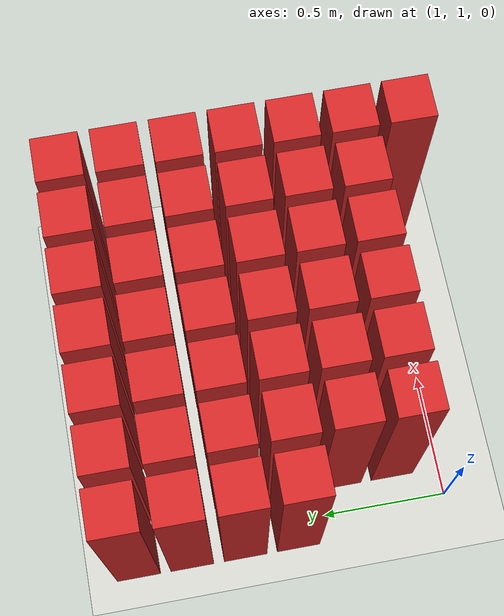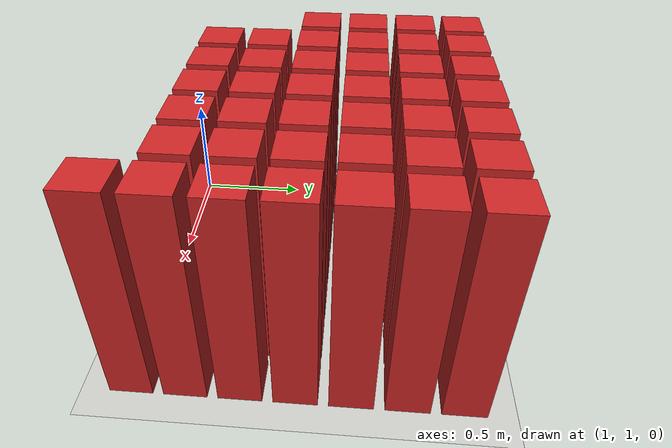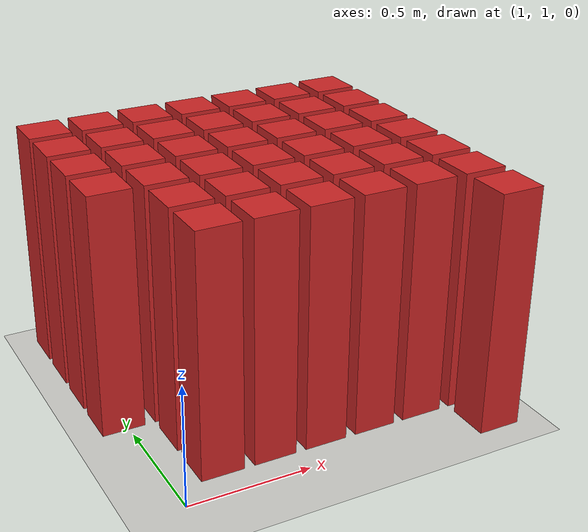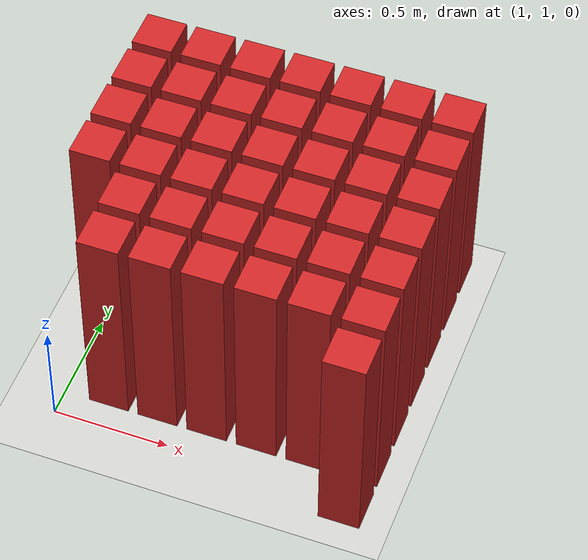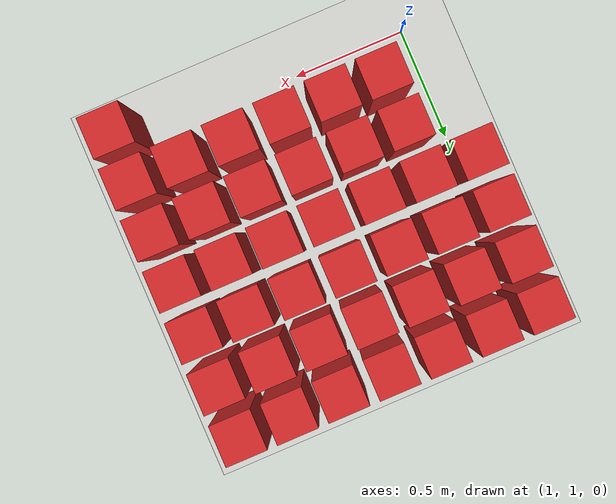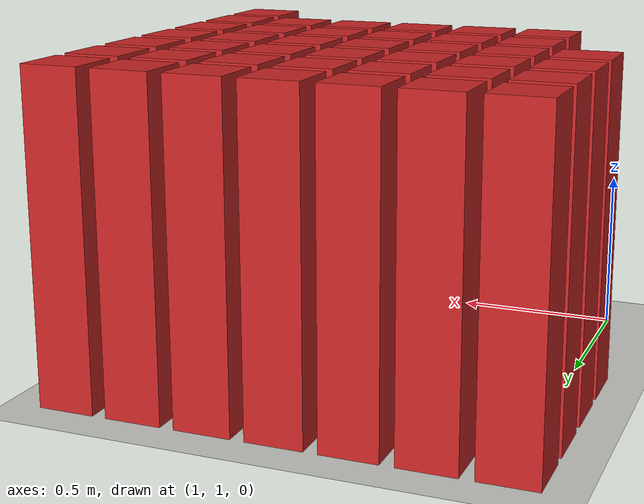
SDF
<sdf version="1.7">
 <world name="default">
  <model name="ground_plane">
   <static>1</static>
   <link name="link">
    <collision name="collision">
     <geometry><plane><normal>0 0 1</normal><size>100 100</size></plane></geometry>
     <surface>
      <contact><collide_bitmask>65535</collide_bitmask></contact>
      <friction><ode><mu>100</mu><mu2>50</mu2></ode></friction>
     </surface>
    </collision>
    <visual name="visual">
     <cast_shadows>0</cast_shadows>
     <geometry><plane><normal>0 0 1</normal><size>100 100</size></plane></geometry>
     <material>
      <script><uri>file://media/materials/scripts/gazebo.material</uri><name>Gazebo/CeilingTiled</name></script>
     </material>
    </visual>
   </link>
  </model>
  <model name="wall390">
   <link name="link">
    <pose>0 0 0.5 0 -0 0</pose>
    <inertial>
     <mass>0.5167</mass>
     <inertia>
      <ixx>0.000861167</ixx>
      <ixy>0</ixy>
      <ixz>0</ixz>
      <iyy>0.000861167</iyy>
      <iyz>0</iyz>
      <izz>0.000861167</izz>
     </inertia>
    </inertial>
    <collision name="collision">
     <geometry><box><size>0.21 0.21 1</size></box></geometry>
     <surface>
      <contact>
       <poissons_ratio>0.347</poissons_ratio>
       <elastic_modulus>8.8e+09</elastic_modulus>
       <ode><kp>100000</kp><kd>100</kd><max_vel>100</max_vel><min_depth>0.001</min_depth></ode>
      </contact>
      <friction>
       <torsional>
        <coefficient>1</coefficient>
        <use_patch_radius>0</use_patch_radius>
        <surface_radius>0.01</surface_radius>
       </torsional>
      </friction>
     </surface>
    </collision>
    <visual name="visual">
     <geometry><box><size>0.175 0.175 1</size></box></geometry>
     <material>
      <script><uri>file://media/materials/scripts/gazebo.material</uri><name>Gazebo/Red</name></script>
     </material>
    </visual>
   </link>
   <pose>2.28261 0.978261 0 0 -0 0</pose>
  </model>
  <model name="wall408">
   <link name="link">
    <pose>0 0 0.5 0 -0 0</pose>
    <inertial>
     <mass>0.5167</mass>
     <inertia>
      <ixx>0.000861167</ixx>
      <ixy>0</ixy>
      <ixz>0</ixz>
      <iyy>0.000861167</iyy>
      <iyz>0</iyz>
      <izz>0.000861167</izz>
     </inertia>
    </inertial>
    <collision name="collision">
     <geometry><box><size>0.21 0.21 1</size></box></geometry>
     <surface>
      <contact>
       <poissons_ratio>0.347</poissons_ratio>
       <elastic_modulus>8.8e+09</elastic_modulus>
       <ode><kp>100000</kp><kd>100</kd><max_vel>100</max_vel><min_depth>0.001</min_depth></ode>
      </contact>
      <friction>
       <torsional>
        <coefficient>1</coefficient>
        <use_patch_radius>0</use_patch_radius>
        <surface_radius>0.01</surface_radius>
       </torsional>
      </friction>
     </surface>
    </collision>
    <visual name="visual">
     <geometry><box><size>0.175 0.175 1</size></box></geometry>
     <material>
      <script><uri>file://media/materials/scripts/gazebo.material</uri><name>Gazebo/Red</name></script>
     </material>
    </visual>
   </link>
   <pose>1.19565 1.19565 0 0 -0 0</pose>
  </model>
  <model name="wall409">
   <link name="link">
    <pose>0 0 0.5 0 -0 0</pose>
    <inertial>
     <mass>0.5167</mass>
     <inertia>
      <ixx>0.000861167</ixx>
      <ixy>0</ixy>
      <ixz>0</ixz>
      <iyy>0.000861167</iyy>
      <iyz>0</iyz>
      <izz>0.000861167</izz>
     </inertia>
    </inertial>
    <collision name="collision">
     <geometry><box><size>0.21 0.21 1</size></box></geometry>
     <surface>
      <contact>
       <poissons_ratio>0.347</poissons_ratio>
       <elastic_modulus>8.8e+09</elastic_modulus>
       <ode><kp>100000</kp><kd>100</kd><max_vel>100</max_vel><min_depth>0.001</min_depth></ode>
      </contact>
      <friction>
       <torsional>
        <coefficient>1</coefficient>
        <use_patch_radius>0</use_patch_radius>
        <surface_radius>0.01</surface_radius>
       </torsional>
      </friction>
     </surface>
    </collision>
    <visual name="visual">
     <geometry><box><size>0.175 0.175 1</size></box></geometry>
     <material>
      <script><uri>file://media/materials/scripts/gazebo.material</uri><name>Gazebo/Red</name></script>
     </material>
    </visual>
   </link>
   <pose>1.41304 1.19565 0 0 -0 0</pose>
  </model>
  <model name="wall410">
   <link name="link">
    <pose>0 0 0.5 0 -0 0</pose>
    <inertial>
     <mass>0.5167</mass>
     <inertia>
      <ixx>0.000861167</ixx>
      <ixy>0</ixy>
      <ixz>0</ixz>
      <iyy>0.000861167</iyy>
      <iyz>0</iyz>
      <izz>0.000861167</izz>
     </inertia>
    </inertial>
    <collision name="collision">
     <geometry><box><size>0.21 0.21 1</size></box></geometry>
     <surface>
      <contact>
       <poissons_ratio>0.347</poissons_ratio>
       <elastic_modulus>8.8e+09</elastic_modulus>
       <ode><kp>100000</kp><kd>100</kd><max_vel>100</max_vel><min_depth>0.001</min_depth></ode>
      </contact>
      <friction>
       <torsional>
        <coefficient>1</coefficient>
        <use_patch_radius>0</use_patch_radius>
        <surface_radius>0.01</surface_radius>
       </torsional>
      </friction>
     </surface>
    </collision>
    <visual name="visual">
     <geometry><box><size>0.175 0.175 1</size></box></geometry>
     <material>
      <script><uri>file://media/materials/scripts/gazebo.material</uri><name>Gazebo/Red</name></script>
     </material>
    </visual>
   </link>
   <pose>1.63043 1.19565 0 0 -0 0</pose>
  </model>
  <model name="wall411">
   <link name="link">
    <pose>0 0 0.5 0 -0 0</pose>
    <inertial>
     <mass>0.5167</mass>
     <inertia>
      <ixx>0.000861167</ixx>
      <ixy>0</ixy>
      <ixz>0</ixz>
      <iyy>0.000861167</iyy>
      <iyz>0</iyz>
      <izz>0.000861167</izz>
     </inertia>
    </inertial>
    <collision name="collision">
     <geometry><box><size>0.21 0.21 1</size></box></geometry>
     <surface>
      <contact>
       <poissons_ratio>0.347</poissons_ratio>
       <elastic_modulus>8.8e+09</elastic_modulus>
       <ode><kp>100000</kp><kd>100</kd><max_vel>100</max_vel><min_depth>0.001</min_depth></ode>
      </contact>
      <friction>
       <torsional>
        <coefficient>1</coefficient>
        <use_patch_radius>0</use_patch_radius>
        <surface_radius>0.01</surface_radius>
       </torsional>
      </friction>
     </surface>
    </collision>
    <visual name="visual">
     <geometry><box><size>0.175 0.175 1</size></box></geometry>
     <material>
      <script><uri>file://media/materials/scripts/gazebo.material</uri><name>Gazebo/Red</name></script>
     </material>
    </visual>
   </link>
   <pose>1.84783 1.19565 0 0 -0 0</pose>
  </model>
  <model name="wall412">
   <link name="link">
    <pose>0 0 0.5 0 -0 0</pose>
    <inertial>
     <mass>0.5167</mass>
     <inertia>
      <ixx>0.000861167</ixx>
      <ixy>0</ixy>
      <ixz>0</ixz>
      <iyy>0.000861167</iyy>
      <iyz>0</iyz>
      <izz>0.000861167</izz>
     </inertia>
    </inertial>
    <collision name="collision">
     <geometry><box><size>0.21 0.21 1</size></box></geometry>
     <surface>
      <contact>
       <poissons_ratio>0.347</poissons_ratio>
       <elastic_modulus>8.8e+09</elastic_modulus>
       <ode><kp>100000</kp><kd>100</kd><max_vel>100</max_vel><min_depth>0.001</min_depth></ode>
      </contact>
      <friction>
       <torsional>
        <coefficient>1</coefficient>
        <use_patch_radius>0</use_patch_radius>
        <surface_radius>0.01</surface_radius>
       </torsional>
      </friction>
     </surface>
    </collision>
    <visual name="visual">
     <geometry><box><size>0.175 0.175 1</size></box></geometry>
     <material>
      <script><uri>file://media/materials/scripts/gazebo.material</uri><name>Gazebo/Red</name></script>
     </material>
    </visual>
   </link>
   <pose>2.06522 1.19565 0 0 -0 0</pose>
  </model>
  <model name="wall413">
   <link name="link">
    <pose>0 0 0.5 0 -0 0</pose>
    <inertial>
     <mass>0.5167</mass>
     <inertia>
      <ixx>0.000861167</ixx>
      <ixy>0</ixy>
      <ixz>0</ixz>
      <iyy>0.000861167</iyy>
      <iyz>0</iyz>
      <izz>0.000861167</izz>
     </inertia>
    </inertial>
    <collision name="collision">
     <geometry><box><size>0.21 0.21 1</size></box></geometry>
     <surface>
      <contact>
       <poissons_ratio>0.347</poissons_ratio>
       <elastic_modulus>8.8e+09</elastic_modulus>
       <ode><kp>100000</kp><kd>100</kd><max_vel>100</max_vel><min_depth>0.001</min_depth></ode>
      </contact>
      <friction>
       <torsional>
        <coefficient>1</coefficient>
        <use_patch_radius>0</use_patch_radius>
        <surface_radius>0.01</surface_radius>
       </torsional>
      </friction>
     </surface>
    </collision>
    <visual name="visual">
     <geometry><box><size>0.175 0.175 1</size></box></geometry>
     <material>
      <script><uri>file://media/materials/scripts/gazebo.material</uri><name>Gazebo/Red</name></script>
     </material>
    </visual>
   </link>
   <pose>2.28261 1.19565 0 0 -0 0</pose>
  </model>
  <model name="wall431">
   <link name="link">
    <pose>0 0 0.5 0 -0 0</pose>
    <inertial>
     <mass>0.5167</mass>
     <inertia>
      <ixx>0.000861167</ixx>
      <ixy>0</ixy>
      <ixz>0</ixz>
      <iyy>0.000861167</iyy>
      <iyz>0</iyz>
      <izz>0.000861167</izz>
     </inertia>
    </inertial>
    <collision name="collision">
     <geometry><box><size>0.21 0.21 1</size></box></geometry>
     <surface>
      <contact>
       <poissons_ratio>0.347</poissons_ratio>
       <elastic_modulus>8.8e+09</elastic_modulus>
       <ode><kp>100000</kp><kd>100</kd><max_vel>100</max_vel><min_depth>0.001</min_depth></ode>
      </contact>
      <friction>
       <torsional>
        <coefficient>1</coefficient>
        <use_patch_radius>0</use_patch_radius>
        <surface_radius>0.01</surface_radius>
       </torsional>
      </friction>
     </surface>
    </collision>
    <visual name="visual">
     <geometry><box><size>0.175 0.175 1</size></box></geometry>
     <material>
      <script><uri>file://media/materials/scripts/gazebo.material</uri><name>Gazebo/Red</name></script>
     </material>
    </visual>
   </link>
   <pose>1.19565 1.41304 0 0 -0 0</pose>
  </model>
  <model name="wall432">
   <link name="link">
    <pose>0 0 0.5 0 -0 0</pose>
    <inertial>
     <mass>0.5167</mass>
     <inertia>
      <ixx>0.000861167</ixx>
      <ixy>0</ixy>
      <ixz>0</ixz>
      <iyy>0.000861167</iyy>
      <iyz>0</iyz>
      <izz>0.000861167</izz>
     </inertia>
    </inertial>
    <collision name="collision">
     <geometry><box><size>0.21 0.21 1</size></box></geometry>
     <surface>
      <contact>
       <poissons_ratio>0.347</poissons_ratio>
       <elastic_modulus>8.8e+09</elastic_modulus>
       <ode><kp>100000</kp><kd>100</kd><max_vel>100</max_vel><min_depth>0.001</min_depth></ode>
      </contact>
      <friction>
       <torsional>
        <coefficient>1</coefficient>
        <use_patch_radius>0</use_patch_radius>
        <surface_radius>0.01</surface_radius>
       </torsional>
      </friction>
     </surface>
    </collision>
    <visual name="visual">
     <geometry><box><size>0.175 0.175 1</size></box></geometry>
     <material>
      <script><uri>file://media/materials/scripts/gazebo.material</uri><name>Gazebo/Red</name></script>
     </material>
    </visual>
   </link>
   <pose>1.41304 1.41304 0 0 -0 0</pose>
  </model>
  <model name="wall433">
   <link name="link">
    <pose>0 0 0.5 0 -0 0</pose>
    <inertial>
     <mass>0.5167</mass>
     <inertia>
      <ixx>0.000861167</ixx>
      <ixy>0</ixy>
      <ixz>0</ixz>
      <iyy>0.000861167</iyy>
      <iyz>0</iyz>
      <izz>0.000861167</izz>
     </inertia>
    </inertial>
    <collision name="collision">
     <geometry><box><size>0.21 0.21 1</size></box></geometry>
     <surface>
      <contact>
       <poissons_ratio>0.347</poissons_ratio>
       <elastic_modulus>8.8e+09</elastic_modulus>
       <ode><kp>100000</kp><kd>100</kd><max_vel>100</max_vel><min_depth>0.001</min_depth></ode>
      </contact>
      <friction>
       <torsional>
        <coefficient>1</coefficient>
        <use_patch_radius>0</use_patch_radius>
        <surface_radius>0.01</surface_radius>
       </torsional>
      </friction>
     </surface>
    </collision>
    <visual name="visual">
     <geometry><box><size>0.175 0.175 1</size></box></geometry>
     <material>
      <script><uri>file://media/materials/scripts/gazebo.material</uri><name>Gazebo/Red</name></script>
     </material>
    </visual>
   </link>
   <pose>1.63043 1.41304 0 0 -0 0</pose>
  </model>
  <model name="wall434">
   <link name="link">
    <pose>0 0 0.5 0 -0 0</pose>
    <inertial>
     <mass>0.5167</mass>
     <inertia>
      <ixx>0.000861167</ixx>
      <ixy>0</ixy>
      <ixz>0</ixz>
      <iyy>0.000861167</iyy>
      <iyz>0</iyz>
      <izz>0.000861167</izz>
     </inertia>
    </inertial>
    <collision name="collision">
     <geometry><box><size>0.21 0.21 1</size></box></geometry>
     <surface>
      <contact>
       <poissons_ratio>0.347</poissons_ratio>
       <elastic_modulus>8.8e+09</elastic_modulus>
       <ode><kp>100000</kp><kd>100</kd><max_vel>100</max_vel><min_depth>0.001</min_depth></ode>
      </contact>
      <friction>
       <torsional>
        <coefficient>1</coefficient>
        <use_patch_radius>0</use_patch_radius>
        <surface_radius>0.01</surface_radius>
       </torsional>
      </friction>
     </surface>
    </collision>
    <visual name="visual">
     <geometry><box><size>0.175 0.175 1</size></box></geometry>
     <material>
      <script><uri>file://media/materials/scripts/gazebo.material</uri><name>Gazebo/Red</name></script>
     </material>
    </visual>
   </link>
   <pose>1.84783 1.41304 0 0 -0 0</pose>
  </model>
  <model name="wall435">
   <link name="link">
    <pose>0 0 0.5 0 -0 0</pose>
    <inertial>
     <mass>0.5167</mass>
     <inertia>
      <ixx>0.000861167</ixx>
      <ixy>0</ixy>
      <ixz>0</ixz>
      <iyy>0.000861167</iyy>
      <iyz>0</iyz>
      <izz>0.000861167</izz>
     </inertia>
    </inertial>
    <collision name="collision">
     <geometry><box><size>0.21 0.21 1</size></box></geometry>
     <surface>
      <contact>
       <poissons_ratio>0.347</poissons_ratio>
       <elastic_modulus>8.8e+09</elastic_modulus>
       <ode><kp>100000</kp><kd>100</kd><max_vel>100</max_vel><min_depth>0.001</min_depth></ode>
      </contact>
      <friction>
       <torsional>
        <coefficient>1</coefficient>
        <use_patch_radius>0</use_patch_radius>
        <surface_radius>0.01</surface_radius>
       </torsional>
      </friction>
     </surface>
    </collision>
    <visual name="visual">
     <geometry><box><size>0.175 0.175 1</size></box></geometry>
     <material>
      <script><uri>file://media/materials/scripts/gazebo.material</uri><name>Gazebo/Red</name></script>
     </material>
    </visual>
   </link>
   <pose>2.06522 1.41304 0 0 -0 0</pose>
  </model>
  <model name="wall436">
   <link name="link">
    <pose>0 0 0.5 0 -0 0</pose>
    <inertial>
     <mass>0.5167</mass>
     <inertia>
      <ixx>0.000861167</ixx>
      <ixy>0</ixy>
      <ixz>0</ixz>
      <iyy>0.000861167</iyy>
      <iyz>0</iyz>
      <izz>0.000861167</izz>
     </inertia>
    </inertial>
    <collision name="collision">
     <geometry><box><size>0.21 0.21 1</size></box></geometry>
     <surface>
      <contact>
       <poissons_ratio>0.347</poissons_ratio>
       <elastic_modulus>8.8e+09</elastic_modulus>
       <ode><kp>100000</kp><kd>100</kd><max_vel>100</max_vel><min_depth>0.001</min_depth></ode>
      </contact>
      <friction>
       <torsional>
        <coefficient>1</coefficient>
        <use_patch_radius>0</use_patch_radius>
        <surface_radius>0.01</surface_radius>
       </torsional>
      </friction>
     </surface>
    </collision>
    <visual name="visual">
     <geometry><box><size>0.175 0.175 1</size></box></geometry>
     <material>
      <script><uri>file://media/materials/scripts/gazebo.material</uri><name>Gazebo/Red</name></script>
     </material>
    </visual>
   </link>
   <pose>2.28261 1.41304 0 0 -0 0</pose>
  </model>
  <model name="wall453">
   <link name="link">
    <pose>0 0 0.5 0 -0 0</pose>
    <inertial>
     <mass>0.5167</mass>
     <inertia>
      <ixx>0.000861167</ixx>
      <ixy>0</ixy>
      <ixz>0</ixz>
      <iyy>0.000861167</iyy>
      <iyz>0</iyz>
      <izz>0.000861167</izz>
     </inertia>
    </inertial>
    <collision name="collision">
     <geometry><box><size>0.21 0.21 1</size></box></geometry>
     <surface>
      <contact>
       <poissons_ratio>0.347</poissons_ratio>
       <elastic_modulus>8.8e+09</elastic_modulus>
       <ode><kp>100000</kp><kd>100</kd><max_vel>100</max_vel><min_depth>0.001</min_depth></ode>
      </contact>
      <friction>
       <torsional>
        <coefficient>1</coefficient>
        <use_patch_radius>0</use_patch_radius>
        <surface_radius>0.01</surface_radius>
       </torsional>
      </friction>
     </surface>
    </collision>
    <visual name="visual">
     <geometry><box><size>0.175 0.175 1</size></box></geometry>
     <material>
      <script><uri>file://media/materials/scripts/gazebo.material</uri><name>Gazebo/Red</name></script>
     </material>
    </visual>
   </link>
   <pose>0.978261 1.63043 0 0 -0 0</pose>
  </model>
  <model name="wall454">
   <link name="link">
    <pose>0 0 0.5 0 -0 0</pose>
    <inertial>
     <mass>0.5167</mass>
     <inertia>
      <ixx>0.000861167</ixx>
      <ixy>0</ixy>
      <ixz>0</ixz>
      <iyy>0.000861167</iyy>
      <iyz>0</iyz>
      <izz>0.000861167</izz>
     </inertia>
    </inertial>
    <collision name="collision">
     <geometry><box><size>0.21 0.21 1</size></box></geometry>
     <surface>
      <contact>
       <poissons_ratio>0.347</poissons_ratio>
       <elastic_modulus>8.8e+09</elastic_modulus>
       <ode><kp>100000</kp><kd>100</kd><max_vel>100</max_vel><min_depth>0.001</min_depth></ode>
      </contact>
      <friction>
       <torsional>
        <coefficient>1</coefficient>
        <use_patch_radius>0</use_patch_radius>
        <surface_radius>0.01</surface_radius>
       </torsional>
      </friction>
     </surface>
    </collision>
    <visual name="visual">
     <geometry><box><size>0.175 0.175 1</size></box></geometry>
     <material>
      <script><uri>file://media/materials/scripts/gazebo.material</uri><name>Gazebo/Red</name></script>
     </material>
    </visual>
   </link>
   <pose>1.19565 1.63043 0 0 -0 0</pose>
  </model>
  <model name="wall455">
   <link name="link">
    <pose>0 0 0.5 0 -0 0</pose>
    <inertial>
     <mass>0.5167</mass>
     <inertia>
      <ixx>0.000861167</ixx>
      <ixy>0</ixy>
      <ixz>0</ixz>
      <iyy>0.000861167</iyy>
      <iyz>0</iyz>
      <izz>0.000861167</izz>
     </inertia>
    </inertial>
    <collision name="collision">
     <geometry><box><size>0.21 0.21 1</size></box></geometry>
     <surface>
      <contact>
       <poissons_ratio>0.347</poissons_ratio>
       <elastic_modulus>8.8e+09</elastic_modulus>
       <ode><kp>100000</kp><kd>100</kd><max_vel>100</max_vel><min_depth>0.001</min_depth></ode>
      </contact>
      <friction>
       <torsional>
        <coefficient>1</coefficient>
        <use_patch_radius>0</use_patch_radius>
        <surface_radius>0.01</surface_radius>
       </torsional>
      </friction>
     </surface>
    </collision>
    <visual name="visual">
     <geometry><box><size>0.175 0.175 1</size></box></geometry>
     <material>
      <script><uri>file://media/materials/scripts/gazebo.material</uri><name>Gazebo/Red</name></script>
     </material>
    </visual>
   </link>
   <pose>1.41304 1.63043 0 0 -0 0</pose>
  </model>
  <model name="wall456">
   <link name="link">
    <pose>0 0 0.5 0 -0 0</pose>
    <inertial>
     <mass>0.5167</mass>
     <inertia>
      <ixx>0.000861167</ixx>
      <ixy>0</ixy>
      <ixz>0</ixz>
      <iyy>0.000861167</iyy>
      <iyz>0</iyz>
      <izz>0.000861167</izz>
     </inertia>
    </inertial>
    <collision name="collision">
     <geometry><box><size>0.21 0.21 1</size></box></geometry>
     <surface>
      <contact>
       <poissons_ratio>0.347</poissons_ratio>
       <elastic_modulus>8.8e+09</elastic_modulus>
       <ode><kp>100000</kp><kd>100</kd><max_vel>100</max_vel><min_depth>0.001</min_depth></ode>
      </contact>
      <friction>
       <torsional>
        <coefficient>1</coefficient>
        <use_patch_radius>0</use_patch_radius>
        <surface_radius>0.01</surface_radius>
       </torsional>
      </friction>
     </surface>
    </collision>
    <visual name="visual">
     <geometry><box><size>0.175 0.175 1</size></box></geometry>
     <material>
      <script><uri>file://media/materials/scripts/gazebo.material</uri><name>Gazebo/Red</name></script>
     </material>
    </visual>
   </link>
   <pose>1.63043 1.63043 0 0 -0 0</pose>
  </model>
  <model name="wall457">
   <link name="link">
    <pose>0 0 0.5 0 -0 0</pose>
    <inertial>
     <mass>0.5167</mass>
     <inertia>
      <ixx>0.000861167</ixx>
      <ixy>0</ixy>
      <ixz>0</ixz>
      <iyy>0.000861167</iyy>
      <iyz>0</iyz>
      <izz>0.000861167</izz>
     </inertia>
    </inertial>
    <collision name="collision">
     <geometry><box><size>0.21 0.21 1</size></box></geometry>
     <surface>
      <contact>
       <poissons_ratio>0.347</poissons_ratio>
       <elastic_modulus>8.8e+09</elastic_modulus>
       <ode><kp>100000</kp><kd>100</kd><max_vel>100</max_vel><min_depth>0.001</min_depth></ode>
      </contact>
      <friction>
       <torsional>
        <coefficient>1</coefficient>
        <use_patch_radius>0</use_patch_radius>
        <surface_radius>0.01</surface_radius>
       </torsional>
      </friction>
     </surface>
    </collision>
    <visual name="visual">
     <geometry><box><size>0.175 0.175 1</size></box></geometry>
     <material>
      <script><uri>file://media/materials/scripts/gazebo.material</uri><name>Gazebo/Red</name></script>
     </material>
    </visual>
   </link>
   <pose>1.84783 1.63043 0 0 -0 0</pose>
  </model>
  <model name="wall458">
   <link name="link">
    <pose>0 0 0.5 0 -0 0</pose>
    <inertial>
     <mass>0.5167</mass>
     <inertia>
      <ixx>0.000861167</ixx>
      <ixy>0</ixy>
      <ixz>0</ixz>
      <iyy>0.000861167</iyy>
      <iyz>0</iyz>
      <izz>0.000861167</izz>
     </inertia>
    </inertial>
    <collision name="collision">
     <geometry><box><size>0.21 0.21 1</size></box></geometry>
     <surface>
      <contact>
       <poissons_ratio>0.347</poissons_ratio>
       <elastic_modulus>8.8e+09</elastic_modulus>
       <ode><kp>100000</kp><kd>100</kd><max_vel>100</max_vel><min_depth>0.001</min_depth></ode>
      </contact>
      <friction>
       <torsional>
        <coefficient>1</coefficient>
        <use_patch_radius>0</use_patch_radius>
        <surface_radius>0.01</surface_radius>
       </torsional>
      </friction>
     </surface>
    </collision>
    <visual name="visual">
     <geometry><box><size>0.175 0.175 1</size></box></geometry>
     <material>
      <script><uri>file://media/materials/scripts/gazebo.material</uri><name>Gazebo/Red</name></script>
     </material>
    </visual>
   </link>
   <pose>2.06522 1.63043 0 0 -0 0</pose>
  </model>
  <model name="wall459">
   <link name="link">
    <pose>0 0 0.5 0 -0 0</pose>
    <inertial>
     <mass>0.5167</mass>
     <inertia>
      <ixx>0.000861167</ixx>
      <ixy>0</ixy>
      <ixz>0</ixz>
      <iyy>0.000861167</iyy>
      <iyz>0</iyz>
      <izz>0.000861167</izz>
     </inertia>
    </inertial>
    <collision name="collision">
     <geometry><box><size>0.21 0.21 1</size></box></geometry>
     <surface>
      <contact>
       <poissons_ratio>0.347</poissons_ratio>
       <elastic_modulus>8.8e+09</elastic_modulus>
       <ode><kp>100000</kp><kd>100</kd><max_vel>100</max_vel><min_depth>0.001</min_depth></ode>
      </contact>
      <friction>
       <torsional>
        <coefficient>1</coefficient>
        <use_patch_radius>0</use_patch_radius>
        <surface_radius>0.01</surface_radius>
       </torsional>
      </friction>
     </surface>
    </collision>
    <visual name="visual">
     <geometry><box><size>0.175 0.175 1</size></box></geometry>
     <material>
      <script><uri>file://media/materials/scripts/gazebo.material</uri><name>Gazebo/Red</name></script>
     </material>
    </visual>
   </link>
   <pose>2.28261 1.63043 0 0 -0 0</pose>
  </model>
  <model name="wall476">
   <link name="link">
    <pose>0 0 0.5 0 -0 0</pose>
    <inertial>
     <mass>0.5167</mass>
     <inertia>
      <ixx>0.000861167</ixx>
      <ixy>0</ixy>
      <ixz>0</ixz>
      <iyy>0.000861167</iyy>
      <iyz>0</iyz>
      <izz>0.000861167</izz>
     </inertia>
    </inertial>
    <collision name="collision">
     <geometry><box><size>0.21 0.21 1</size></box></geometry>
     <surface>
      <contact>
       <poissons_ratio>0.347</poissons_ratio>
       <elastic_modulus>8.8e+09</elastic_modulus>
       <ode><kp>100000</kp><kd>100</kd><max_vel>100</max_vel><min_depth>0.001</min_depth></ode>
      </contact>
      <friction>
       <torsional>
        <coefficient>1</coefficient>
        <use_patch_radius>0</use_patch_radius>
        <surface_radius>0.01</surface_radius>
       </torsional>
      </friction>
     </surface>
    </collision>
    <visual name="visual">
     <geometry><box><size>0.175 0.175 1</size></box></geometry>
     <material>
      <script><uri>file://media/materials/scripts/gazebo.material</uri><name>Gazebo/Red</name></script>
     </material>
    </visual>
   </link>
   <pose>0.978261 1.84783 0 0 -0 0</pose>
  </model>
  <model name="wall477">
   <link name="link">
    <pose>0 0 0.5 0 -0 0</pose>
    <inertial>
     <mass>0.5167</mass>
     <inertia>
      <ixx>0.000861167</ixx>
      <ixy>0</ixy>
      <ixz>0</ixz>
      <iyy>0.000861167</iyy>
      <iyz>0</iyz>
      <izz>0.000861167</izz>
     </inertia>
    </inertial>
    <collision name="collision">
     <geometry><box><size>0.21 0.21 1</size></box></geometry>
     <surface>
      <contact>
       <poissons_ratio>0.347</poissons_ratio>
       <elastic_modulus>8.8e+09</elastic_modulus>
       <ode><kp>100000</kp><kd>100</kd><max_vel>100</max_vel><min_depth>0.001</min_depth></ode>
      </contact>
      <friction>
       <torsional>
        <coefficient>1</coefficient>
        <use_patch_radius>0</use_patch_radius>
        <surface_radius>0.01</surface_radius>
       </torsional>
      </friction>
     </surface>
    </collision>
    <visual name="visual">
     <geometry><box><size>0.175 0.175 1</size></box></geometry>
     <material>
      <script><uri>file://media/materials/scripts/gazebo.material</uri><name>Gazebo/Red</name></script>
     </material>
    </visual>
   </link>
   <pose>1.19565 1.84783 0 0 -0 0</pose>
  </model>
  <model name="wall478">
   <link name="link">
    <pose>0 0 0.5 0 -0 0</pose>
    <inertial>
     <mass>0.5167</mass>
     <inertia>
      <ixx>0.000861167</ixx>
      <ixy>0</ixy>
      <ixz>0</ixz>
      <iyy>0.000861167</iyy>
      <iyz>0</iyz>
      <izz>0.000861167</izz>
     </inertia>
    </inertial>
    <collision name="collision">
     <geometry><box><size>0.21 0.21 1</size></box></geometry>
     <surface>
      <contact>
       <poissons_ratio>0.347</poissons_ratio>
       <elastic_modulus>8.8e+09</elastic_modulus>
       <ode><kp>100000</kp><kd>100</kd><max_vel>100</max_vel><min_depth>0.001</min_depth></ode>
      </contact>
      <friction>
       <torsional>
        <coefficient>1</coefficient>
        <use_patch_radius>0</use_patch_radius>
        <surface_radius>0.01</surface_radius>
       </torsional>
      </friction>
     </surface>
    </collision>
    <visual name="visual">
     <geometry><box><size>0.175 0.175 1</size></box></geometry>
     <material>
      <script><uri>file://media/materials/scripts/gazebo.material</uri><name>Gazebo/Red</name></script>
     </material>
    </visual>
   </link>
   <pose>1.41304 1.84783 0 0 -0 0</pose>
  </model>
  <model name="wall479">
   <link name="link">
    <pose>0 0 0.5 0 -0 0</pose>
    <inertial>
     <mass>0.5167</mass>
     <inertia>
      <ixx>0.000861167</ixx>
      <ixy>0</ixy>
      <ixz>0</ixz>
      <iyy>0.000861167</iyy>
      <iyz>0</iyz>
      <izz>0.000861167</izz>
     </inertia>
    </inertial>
    <collision name="collision">
     <geometry><box><size>0.21 0.21 1</size></box></geometry>
     <surface>
      <contact>
       <poissons_ratio>0.347</poissons_ratio>
       <elastic_modulus>8.8e+09</elastic_modulus>
       <ode><kp>100000</kp><kd>100</kd><max_vel>100</max_vel><min_depth>0.001</min_depth></ode>
      </contact>
      <friction>
       <torsional>
        <coefficient>1</coefficient>
        <use_patch_radius>0</use_patch_radius>
        <surface_radius>0.01</surface_radius>
       </torsional>
      </friction>
     </surface>
    </collision>
    <visual name="visual">
     <geometry><box><size>0.175 0.175 1</size></box></geometry>
     <material>
      <script><uri>file://media/materials/scripts/gazebo.material</uri><name>Gazebo/Red</name></script>
     </material>
    </visual>
   </link>
   <pose>1.63043 1.84783 0 0 -0 0</pose>
  </model>
  <model name="wall480">
   <link name="link">
    <pose>0 0 0.5 0 -0 0</pose>
    <inertial>
     <mass>0.5167</mass>
     <inertia>
      <ixx>0.000861167</ixx>
      <ixy>0</ixy>
      <ixz>0</ixz>
      <iyy>0.000861167</iyy>
      <iyz>0</iyz>
      <izz>0.000861167</izz>
     </inertia>
    </inertial>
    <collision name="collision">
     <geometry><box><size>0.21 0.21 1</size></box></geometry>
     <surface>
      <contact>
       <poissons_ratio>0.347</poissons_ratio>
       <elastic_modulus>8.8e+09</elastic_modulus>
       <ode><kp>100000</kp><kd>100</kd><max_vel>100</max_vel><min_depth>0.001</min_depth></ode>
      </contact>
      <friction>
       <torsional>
        <coefficient>1</coefficient>
        <use_patch_radius>0</use_patch_radius>
        <surface_radius>0.01</surface_radius>
       </torsional>
      </friction>
     </surface>
    </collision>
    <visual name="visual">
     <geometry><box><size>0.175 0.175 1</size></box></geometry>
     <material>
      <script><uri>file://media/materials/scripts/gazebo.material</uri><name>Gazebo/Red</name></script>
     </material>
    </visual>
   </link>
   <pose>1.84783 1.84783 0 0 -0 0</pose>
  </model>
  <model name="wall481">
   <link name="link">
    <pose>0 0 0.5 0 -0 0</pose>
    <inertial>
     <mass>0.5167</mass>
     <inertia>
      <ixx>0.000861167</ixx>
      <ixy>0</ixy>
      <ixz>0</ixz>
      <iyy>0.000861167</iyy>
      <iyz>0</iyz>
      <izz>0.000861167</izz>
     </inertia>
    </inertial>
    <collision name="collision">
     <geometry><box><size>0.21 0.21 1</size></box></geometry>
     <surface>
      <contact>
       <poissons_ratio>0.347</poissons_ratio>
       <elastic_modulus>8.8e+09</elastic_modulus>
       <ode><kp>100000</kp><kd>100</kd><max_vel>100</max_vel><min_depth>0.001</min_depth></ode>
      </contact>
      <friction>
       <torsional>
        <coefficient>1</coefficient>
        <use_patch_radius>0</use_patch_radius>
        <surface_radius>0.01</surface_radius>
       </torsional>
      </friction>
     </surface>
    </collision>
    <visual name="visual">
     <geometry><box><size>0.175 0.175 1</size></box></geometry>
     <material>
      <script><uri>file://media/materials/scripts/gazebo.material</uri><name>Gazebo/Red</name></script>
     </material>
    </visual>
   </link>
   <pose>2.06522 1.84783 0 0 -0 0</pose>
  </model>
  <model name="wall482">
   <link name="link">
    <pose>0 0 0.5 0 -0 0</pose>
    <inertial>
     <mass>0.5167</mass>
     <inertia>
      <ixx>0.000861167</ixx>
      <ixy>0</ixy>
      <ixz>0</ixz>
      <iyy>0.000861167</iyy>
      <iyz>0</iyz>
      <izz>0.000861167</izz>
     </inertia>
    </inertial>
    <collision name="collision">
     <geometry><box><size>0.21 0.21 1</size></box></geometry>
     <surface>
      <contact>
       <poissons_ratio>0.347</poissons_ratio>
       <elastic_modulus>8.8e+09</elastic_modulus>
       <ode><kp>100000</kp><kd>100</kd><max_vel>100</max_vel><min_depth>0.001</min_depth></ode>
      </contact>
      <friction>
       <torsional>
        <coefficient>1</coefficient>
        <use_patch_radius>0</use_patch_radius>
        <surface_radius>0.01</surface_radius>
       </torsional>
      </friction>
     </surface>
    </collision>
    <visual name="visual">
     <geometry><box><size>0.175 0.175 1</size></box></geometry>
     <material>
      <script><uri>file://media/materials/scripts/gazebo.material</uri><name>Gazebo/Red</name></script>
     </material>
    </visual>
   </link>
   <pose>2.28261 1.84783 0 0 -0 0</pose>
  </model>
  <model name="wall499">
   <link name="link">
    <pose>0 0 0.5 0 -0 0</pose>
    <inertial>
     <mass>0.5167</mass>
     <inertia>
      <ixx>0.000861167</ixx>
      <ixy>0</ixy>
      <ixz>0</ixz>
      <iyy>0.000861167</iyy>
      <iyz>0</iyz>
      <izz>0.000861167</izz>
     </inertia>
    </inertial>
    <collision name="collision">
     <geometry><box><size>0.21 0.21 1</size></box></geometry>
     <surface>
      <contact>
       <poissons_ratio>0.347</poissons_ratio>
       <elastic_modulus>8.8e+09</elastic_modulus>
       <ode><kp>100000</kp><kd>100</kd><max_vel>100</max_vel><min_depth>0.001</min_depth></ode>
      </contact>
      <friction>
       <torsional>
        <coefficient>1</coefficient>
        <use_patch_radius>0</use_patch_radius>
        <surface_radius>0.01</surface_radius>
       </torsional>
      </friction>
     </surface>
    </collision>
    <visual name="visual">
     <geometry><box><size>0.175 0.175 1</size></box></geometry>
     <material>
      <script><uri>file://media/materials/scripts/gazebo.material</uri><name>Gazebo/Red</name></script>
     </material>
    </visual>
   </link>
   <pose>0.978261 2.06522 0 0 -0 0</pose>
  </model>
  <model name="wall500">
   <link name="link">
    <pose>0 0 0.5 0 -0 0</pose>
    <inertial>
     <mass>0.5167</mass>
     <inertia>
      <ixx>0.000861167</ixx>
      <ixy>0</ixy>
      <ixz>0</ixz>
      <iyy>0.000861167</iyy>
      <iyz>0</iyz>
      <izz>0.000861167</izz>
     </inertia>
    </inertial>
    <collision name="collision">
     <geometry><box><size>0.21 0.21 1</size></box></geometry>
     <surface>
      <contact>
       <poissons_ratio>0.347</poissons_ratio>
       <elastic_modulus>8.8e+09</elastic_modulus>
       <ode><kp>100000</kp><kd>100</kd><max_vel>100</max_vel><min_depth>0.001</min_depth></ode>
      </contact>
      <friction>
       <torsional>
        <coefficient>1</coefficient>
        <use_patch_radius>0</use_patch_radius>
        <surface_radius>0.01</surface_radius>
       </torsional>
      </friction>
     </surface>
    </collision>
    <visual name="visual">
     <geometry><box><size>0.175 0.175 1</size></box></geometry>
     <material>
      <script><uri>file://media/materials/scripts/gazebo.material</uri><name>Gazebo/Red</name></script>
     </material>
    </visual>
   </link>
   <pose>1.19565 2.06522 0 0 -0 0</pose>
  </model>
  <model name="wall501">
   <link name="link">
    <pose>0 0 0.5 0 -0 0</pose>
    <inertial>
     <mass>0.5167</mass>
     <inertia>
      <ixx>0.000861167</ixx>
      <ixy>0</ixy>
      <ixz>0</ixz>
      <iyy>0.000861167</iyy>
      <iyz>0</iyz>
      <izz>0.000861167</izz>
     </inertia>
    </inertial>
    <collision name="collision">
     <geometry><box><size>0.21 0.21 1</size></box></geometry>
     <surface>
      <contact>
       <poissons_ratio>0.347</poissons_ratio>
       <elastic_modulus>8.8e+09</elastic_modulus>
       <ode><kp>100000</kp><kd>100</kd><max_vel>100</max_vel><min_depth>0.001</min_depth></ode>
      </contact>
      <friction>
       <torsional>
        <coefficient>1</coefficient>
        <use_patch_radius>0</use_patch_radius>
        <surface_radius>0.01</surface_radius>
       </torsional>
      </friction>
     </surface>
    </collision>
    <visual name="visual">
     <geometry><box><size>0.175 0.175 1</size></box></geometry>
     <material>
      <script><uri>file://media/materials/scripts/gazebo.material</uri><name>Gazebo/Red</name></script>
     </material>
    </visual>
   </link>
   <pose>1.41304 2.06522 0 0 -0 0</pose>
  </model>
  <model name="wall502">
   <link name="link">
    <pose>0 0 0.5 0 -0 0</pose>
    <inertial>
     <mass>0.5167</mass>
     <inertia>
      <ixx>0.000861167</ixx>
      <ixy>0</ixy>
      <ixz>0</ixz>
      <iyy>0.000861167</iyy>
      <iyz>0</iyz>
      <izz>0.000861167</izz>
     </inertia>
    </inertial>
    <collision name="collision">
     <geometry><box><size>0.21 0.21 1</size></box></geometry>
     <surface>
      <contact>
       <poissons_ratio>0.347</poissons_ratio>
       <elastic_modulus>8.8e+09</elastic_modulus>
       <ode><kp>100000</kp><kd>100</kd><max_vel>100</max_vel><min_depth>0.001</min_depth></ode>
      </contact>
      <friction>
       <torsional>
        <coefficient>1</coefficient>
        <use_patch_radius>0</use_patch_radius>
        <surface_radius>0.01</surface_radius>
       </torsional>
      </friction>
     </surface>
    </collision>
    <visual name="visual">
     <geometry><box><size>0.175 0.175 1</size></box></geometry>
     <material>
      <script><uri>file://media/materials/scripts/gazebo.material</uri><name>Gazebo/Red</name></script>
     </material>
    </visual>
   </link>
   <pose>1.63043 2.06522 0 0 -0 0</pose>
  </model>
  <model name="wall503">
   <link name="link">
    <pose>0 0 0.5 0 -0 0</pose>
    <inertial>
     <mass>0.5167</mass>
     <inertia>
      <ixx>0.000861167</ixx>
      <ixy>0</ixy>
      <ixz>0</ixz>
      <iyy>0.000861167</iyy>
      <iyz>0</iyz>
      <izz>0.000861167</izz>
     </inertia>
    </inertial>
    <collision name="collision">
     <geometry><box><size>0.21 0.21 1</size></box></geometry>
     <surface>
      <contact>
       <poissons_ratio>0.347</poissons_ratio>
       <elastic_modulus>8.8e+09</elastic_modulus>
       <ode><kp>100000</kp><kd>100</kd><max_vel>100</max_vel><min_depth>0.001</min_depth></ode>
      </contact>
      <friction>
       <torsional>
        <coefficient>1</coefficient>
        <use_patch_radius>0</use_patch_radius>
        <surface_radius>0.01</surface_radius>
       </torsional>
      </friction>
     </surface>
    </collision>
    <visual name="visual">
     <geometry><box><size>0.175 0.175 1</size></box></geometry>
     <material>
      <script><uri>file://media/materials/scripts/gazebo.material</uri><name>Gazebo/Red</name></script>
     </material>
    </visual>
   </link>
   <pose>1.84783 2.06522 0 0 -0 0</pose>
  </model>
  <model name="wall504">
   <link name="link">
    <pose>0 0 0.5 0 -0 0</pose>
    <inertial>
     <mass>0.5167</mass>
     <inertia>
      <ixx>0.000861167</ixx>
      <ixy>0</ixy>
      <ixz>0</ixz>
      <iyy>0.000861167</iyy>
      <iyz>0</iyz>
      <izz>0.000861167</izz>
     </inertia>
    </inertial>
    <collision name="collision">
     <geometry><box><size>0.21 0.21 1</size></box></geometry>
     <surface>
      <contact>
       <poissons_ratio>0.347</poissons_ratio>
       <elastic_modulus>8.8e+09</elastic_modulus>
       <ode><kp>100000</kp><kd>100</kd><max_vel>100</max_vel><min_depth>0.001</min_depth></ode>
      </contact>
      <friction>
       <torsional>
        <coefficient>1</coefficient>
        <use_patch_radius>0</use_patch_radius>
        <surface_radius>0.01</surface_radius>
       </torsional>
      </friction>
     </surface>
    </collision>
    <visual name="visual">
     <geometry><box><size>0.175 0.175 1</size></box></geometry>
     <material>
      <script><uri>file://media/materials/scripts/gazebo.material</uri><name>Gazebo/Red</name></script>
     </material>
    </visual>
   </link>
   <pose>2.06522 2.06522 0 0 -0 0</pose>
  </model>
  <model name="wall505">
   <link name="link">
    <pose>0 0 0.5 0 -0 0</pose>
    <inertial>
     <mass>0.5167</mass>
     <inertia>
      <ixx>0.000861167</ixx>
      <ixy>0</ixy>
      <ixz>0</ixz>
      <iyy>0.000861167</iyy>
      <iyz>0</iyz>
      <izz>0.000861167</izz>
     </inertia>
    </inertial>
    <collision name="collision">
     <geometry><box><size>0.21 0.21 1</size></box></geometry>
     <surface>
      <contact>
       <poissons_ratio>0.347</poissons_ratio>
       <elastic_modulus>8.8e+09</elastic_modulus>
       <ode><kp>100000</kp><kd>100</kd><max_vel>100</max_vel><min_depth>0.001</min_depth></ode>
      </contact>
      <friction>
       <torsional>
        <coefficient>1</coefficient>
        <use_patch_radius>0</use_patch_radius>
        <surface_radius>0.01</surface_radius>
       </torsional>
      </friction>
     </surface>
    </collision>
    <visual name="visual">
     <geometry><box><size>0.175 0.175 1</size></box></geometry>
     <material>
      <script><uri>file://media/materials/scripts/gazebo.material</uri><name>Gazebo/Red</name></script>
     </material>
    </visual>
   </link>
   <pose>2.28261 2.06522 0 0 -0 0</pose>
  </model>
  <model name="wall522">
   <link name="link">
    <pose>0 0 0.5 0 -0 0</pose>
    <inertial>
     <mass>0.5167</mass>
     <inertia>
      <ixx>0.000861167</ixx>
      <ixy>0</ixy>
      <ixz>0</ixz>
      <iyy>0.000861167</iyy>
      <iyz>0</iyz>
      <izz>0.000861167</izz>
     </inertia>
    </inertial>
    <collision name="collision">
     <geometry><box><size>0.21 0.21 1</size></box></geometry>
     <surface>
      <contact>
       <poissons_ratio>0.347</poissons_ratio>
       <elastic_modulus>8.8e+09</elastic_modulus>
       <ode><kp>100000</kp><kd>100</kd><max_vel>100</max_vel><min_depth>0.001</min_depth></ode>
      </contact>
      <friction>
       <torsional>
        <coefficient>1</coefficient>
        <use_patch_radius>0</use_patch_radius>
        <surface_radius>0.01</surface_radius>
       </torsional>
      </friction>
     </surface>
    </collision>
    <visual name="visual">
     <geometry><box><size>0.175 0.175 1</size></box></geometry>
     <material>
      <script><uri>file://media/materials/scripts/gazebo.material</uri><name>Gazebo/Red</name></script>
     </material>
    </visual>
   </link>
   <pose>0.978261 2.28261 0 0 -0 0</pose>
  </model>
  <model name="wall523">
   <link name="link">
    <pose>0 0 0.5 0 -0 0</pose>
    <inertial>
     <mass>0.5167</mass>
     <inertia>
      <ixx>0.000861167</ixx>
      <ixy>0</ixy>
      <ixz>0</ixz>
      <iyy>0.000861167</iyy>
      <iyz>0</iyz>
      <izz>0.000861167</izz>
     </inertia>
    </inertial>
    <collision name="collision">
     <geometry><box><size>0.21 0.21 1</size></box></geometry>
     <surface>
      <contact>
       <poissons_ratio>0.347</poissons_ratio>
       <elastic_modulus>8.8e+09</elastic_modulus>
       <ode><kp>100000</kp><kd>100</kd><max_vel>100</max_vel><min_depth>0.001</min_depth></ode>
      </contact>
      <friction>
       <torsional>
        <coefficient>1</coefficient>
        <use_patch_radius>0</use_patch_radius>
        <surface_radius>0.01</surface_radius>
       </torsional>
      </friction>
     </surface>
    </collision>
    <visual name="visual">
     <geometry><box><size>0.175 0.175 1</size></box></geometry>
     <material>
      <script><uri>file://media/materials/scripts/gazebo.material</uri><name>Gazebo/Red</name></script>
     </material>
    </visual>
   </link>
   <pose>1.19565 2.28261 0 0 -0 0</pose>
  </model>
  <model name="wall524">
   <link name="link">
    <pose>0 0 0.5 0 -0 0</pose>
    <inertial>
     <mass>0.5167</mass>
     <inertia>
      <ixx>0.000861167</ixx>
      <ixy>0</ixy>
      <ixz>0</ixz>
      <iyy>0.000861167</iyy>
      <iyz>0</iyz>
      <izz>0.000861167</izz>
     </inertia>
    </inertial>
    <collision name="collision">
     <geometry><box><size>0.21 0.21 1</size></box></geometry>
     <surface>
      <contact>
       <poissons_ratio>0.347</poissons_ratio>
       <elastic_modulus>8.8e+09</elastic_modulus>
       <ode><kp>100000</kp><kd>100</kd><max_vel>100</max_vel><min_depth>0.001</min_depth></ode>
      </contact>
      <friction>
       <torsional>
        <coefficient>1</coefficient>
        <use_patch_radius>0</use_patch_radius>
        <surface_radius>0.01</surface_radius>
       </torsional>
      </friction>
     </surface>
    </collision>
    <visual name="visual">
     <geometry><box><size>0.175 0.175 1</size></box></geometry>
     <material>
      <script><uri>file://media/materials/scripts/gazebo.material</uri><name>Gazebo/Red</name></script>
     </material>
    </visual>
   </link>
   <pose>1.41304 2.28261 0 0 -0 0</pose>
  </model>
  <model name="wall525">
   <link name="link">
    <pose>0 0 0.5 0 -0 0</pose>
    <inertial>
     <mass>0.5167</mass>
     <inertia>
      <ixx>0.000861167</ixx>
      <ixy>0</ixy>
      <ixz>0</ixz>
      <iyy>0.000861167</iyy>
      <iyz>0</iyz>
      <izz>0.000861167</izz>
     </inertia>
    </inertial>
    <collision name="collision">
     <geometry><box><size>0.21 0.21 1</size></box></geometry>
     <surface>
      <contact>
       <poissons_ratio>0.347</poissons_ratio>
       <elastic_modulus>8.8e+09</elastic_modulus>
       <ode><kp>100000</kp><kd>100</kd><max_vel>100</max_vel><min_depth>0.001</min_depth></ode>
      </contact>
      <friction>
       <torsional>
        <coefficient>1</coefficient>
        <use_patch_radius>0</use_patch_radius>
        <surface_radius>0.01</surface_radius>
       </torsional>
      </friction>
     </surface>
    </collision>
    <visual name="visual">
     <geometry><box><size>0.175 0.175 1</size></box></geometry>
     <material>
      <script><uri>file://media/materials/scripts/gazebo.material</uri><name>Gazebo/Red</name></script>
     </material>
    </visual>
   </link>
   <pose>1.63043 2.28261 0 0 -0 0</pose>
  </model>
  <model name="wall526">
   <link name="link">
    <pose>0 0 0.5 0 -0 0</pose>
    <inertial>
     <mass>0.5167</mass>
     <inertia>
      <ixx>0.000861167</ixx>
      <ixy>0</ixy>
      <ixz>0</ixz>
      <iyy>0.000861167</iyy>
      <iyz>0</iyz>
      <izz>0.000861167</izz>
     </inertia>
    </inertial>
    <collision name="collision">
     <geometry><box><size>0.21 0.21 1</size></box></geometry>
     <surface>
      <contact>
       <poissons_ratio>0.347</poissons_ratio>
       <elastic_modulus>8.8e+09</elastic_modulus>
       <ode><kp>100000</kp><kd>100</kd><max_vel>100</max_vel><min_depth>0.001</min_depth></ode>
      </contact>
      <friction>
       <torsional>
        <coefficient>1</coefficient>
        <use_patch_radius>0</use_patch_radius>
        <surface_radius>0.01</surface_radius>
       </torsional>
      </friction>
     </surface>
    </collision>
    <visual name="visual">
     <geometry><box><size>0.175 0.175 1</size></box></geometry>
     <material>
      <script><uri>file://media/materials/scripts/gazebo.material</uri><name>Gazebo/Red</name></script>
     </material>
    </visual>
   </link>
   <pose>1.84783 2.28261 0 0 -0 0</pose>
  </model>
  <model name="wall527">
   <link name="link">
    <pose>0 0 0.5 0 -0 0</pose>
    <inertial>
     <mass>0.5167</mass>
     <inertia>
      <ixx>0.000861167</ixx>
      <ixy>0</ixy>
      <ixz>0</ixz>
      <iyy>0.000861167</iyy>
      <iyz>0</iyz>
      <izz>0.000861167</izz>
     </inertia>
    </inertial>
    <collision name="collision">
     <geometry><box><size>0.21 0.21 1</size></box></geometry>
     <surface>
      <contact>
       <poissons_ratio>0.347</poissons_ratio>
       <elastic_modulus>8.8e+09</elastic_modulus>
       <ode><kp>100000</kp><kd>100</kd><max_vel>100</max_vel><min_depth>0.001</min_depth></ode>
      </contact>
      <friction>
       <torsional>
        <coefficient>1</coefficient>
        <use_patch_radius>0</use_patch_radius>
        <surface_radius>0.01</surface_radius>
       </torsional>
      </friction>
     </surface>
    </collision>
    <visual name="visual">
     <geometry><box><size>0.175 0.175 1</size></box></geometry>
     <material>
      <script><uri>file://media/materials/scripts/gazebo.material</uri><name>Gazebo/Red</name></script>
     </material>
    </visual>
   </link>
   <pose>2.06522 2.28261 0 0 -0 0</pose>
  </model>
  <model name="wall528">
   <link name="link">
    <pose>0 0 0.5 0 -0 0</pose>
    <inertial>
     <mass>0.5167</mass>
     <inertia>
      <ixx>0.000861167</ixx>
      <ixy>0</ixy>
      <ixz>0</ixz>
      <iyy>0.000861167</iyy>
      <iyz>0</iyz>
      <izz>0.000861167</izz>
     </inertia>
    </inertial>
    <collision name="collision">
     <geometry><box><size>0.21 0.21 1</size></box></geometry>
     <surface>
      <contact>
       <poissons_ratio>0.347</poissons_ratio>
       <elastic_modulus>8.8e+09</elastic_modulus>
       <ode><kp>100000</kp><kd>100</kd><max_vel>100</max_vel><min_depth>0.001</min_depth></ode>
      </contact>
      <friction>
       <torsional>
        <coefficient>1</coefficient>
        <use_patch_radius>0</use_patch_radius>
        <surface_radius>0.01</surface_radius>
       </torsional>
      </friction>
     </surface>
    </collision>
    <visual name="visual">
     <geometry><box><size>0.175 0.175 1</size></box></geometry>
     <material>
      <script><uri>file://media/materials/scripts/gazebo.material</uri><name>Gazebo/Red</name></script>
     </material>
    </visual>
   </link>
   <pose>2.28261 2.28261 0 0 -0 0</pose>
  </model>
 </world>
</sdf>
